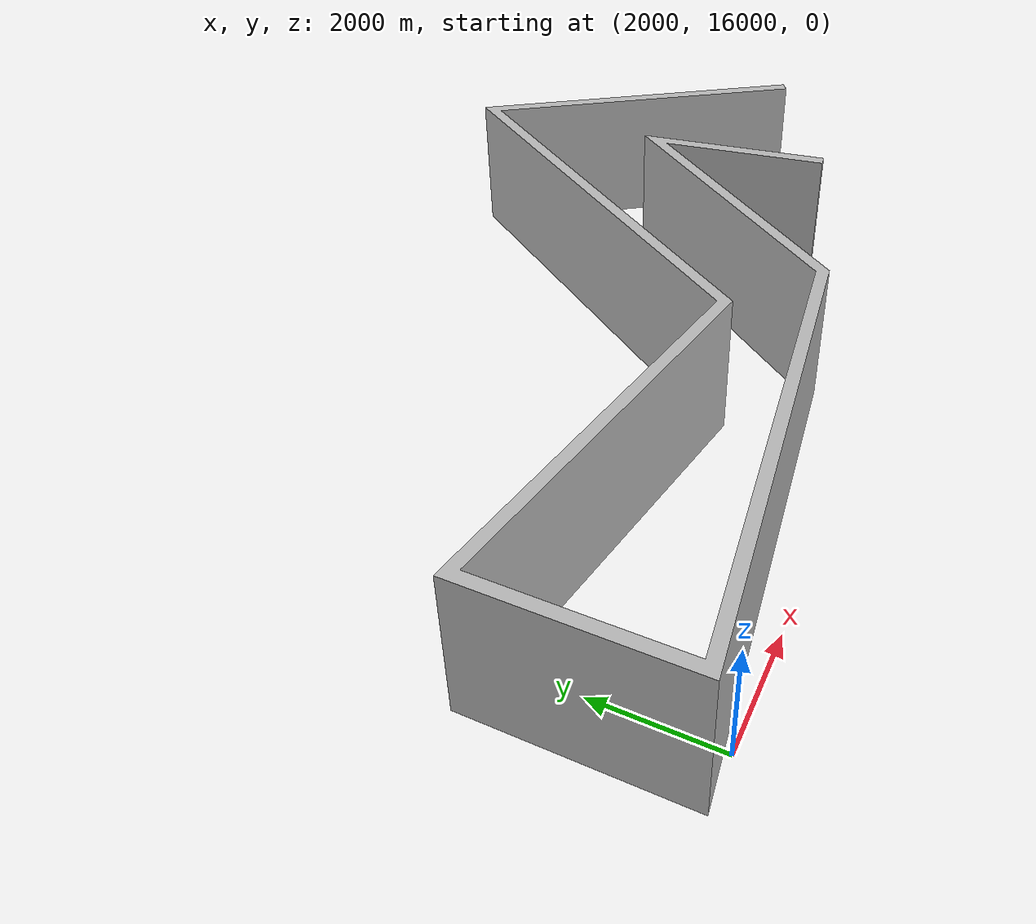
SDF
<?xml version="1.0" ?>
<sdf version="1.4">
  <model name="Maze 1">
    <static>true</static>
    <link name="link">
      <collision name="collision">
        <geometry>
          <mesh>
            <uri>model://maze_1/meshes/maze1.stl</uri>
          </mesh>
        </geometry>
      </collision>
      <visual name="visual">
        <geometry>
          <mesh>
            <uri>model://maze_1/meshes/maze1.stl</uri>
          </mesh>
        </geometry>
        <material>
          <script>
            <uri>file://media/materials/scripts/kitchen.material</uri>
	    <name>Kitchen/Wall</name>
	  </script>
        </material>
      </visual>
    </link>
  </model>
</sdf>
